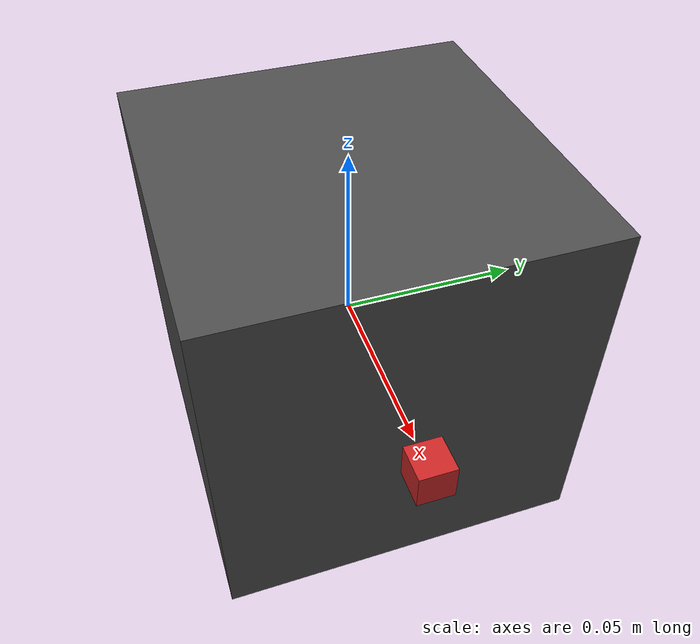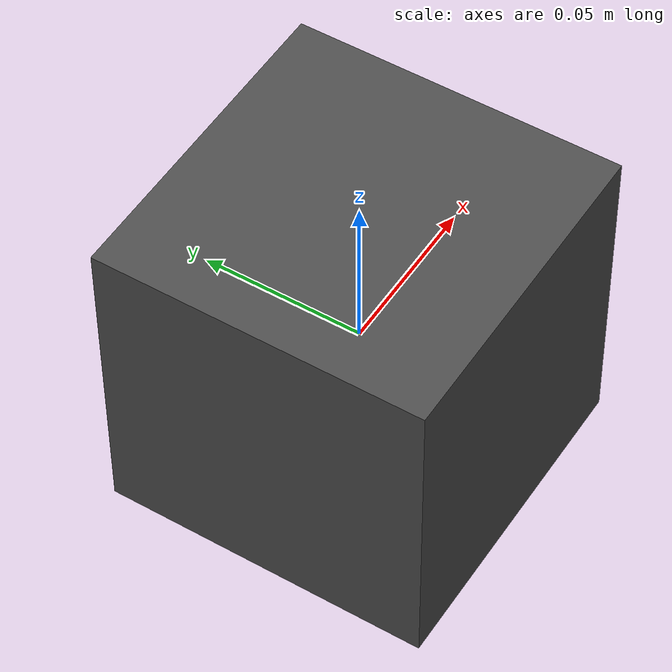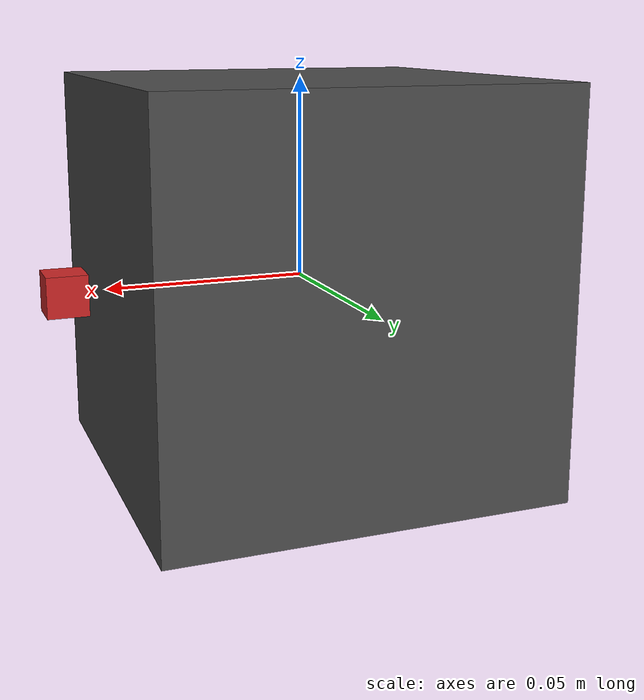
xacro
<?xml version="1.0"?>
<robot name="iiwa14" xmlns:xacro="http://ros.org/wiki/xacro">

  <xacro:arg name="robot_namespace" default="/" />

  <!-- Import all Gazebo-customization elements, including Gazebo colors -->
  <xacro:include filename="$(find markers)/urdf/cam.gazebo"/>

  <link name="link_7">
    <inertial>
      <origin xyz="0 0 0.0" rpy="0 0 0"/>
      <mass value="0.3"/>
      <inertia ixx="0.001"  ixy="0"  ixz="0" iyy="0.001" iyz="0" izz="0.001" />
    </inertial>
    <visual>
      <origin rpy="0 0 0" xyz="0 0 0"/>
      <geometry>
        <box size="0.1 0.1 0.1"/>
      </geometry>
    </visual>
    <collision name="tip">
      <origin rpy="0 0 0" xyz="0 0 0"/>
      <geometry>
        <box size="0.1 0.1 0.1"/>
      </geometry>
    </collision>
  </link>

  <!--link_camera-->
	<link name="cam_link">
		<visual>
			<origin rpy="0 0 0" xyz="0 0 0"/>
			<geometry>
        <box size="0.01 0.01 0.01"/>
			</geometry>
		</visual>
	</link>

	<joint name="cam_joint" type="fixed">
    <parent link="link_7"/>
    <child link="cam_link"/>
    <origin rpy="0 0 0" xyz="0.06 0 0.0"/>
  </joint>

</robot>
